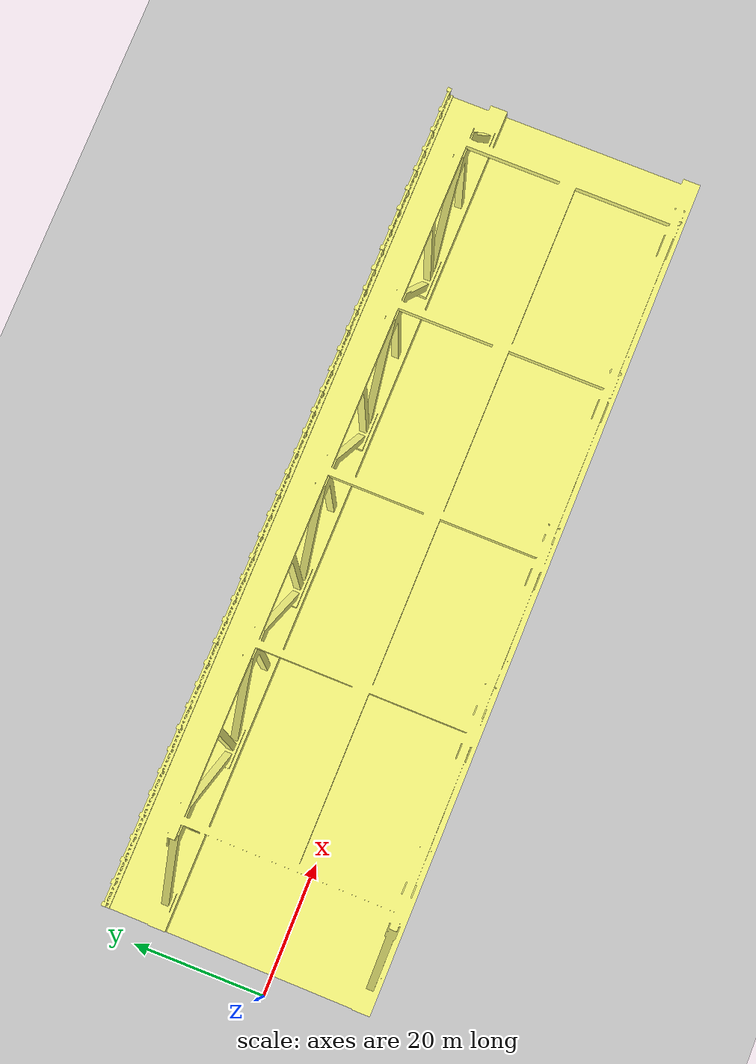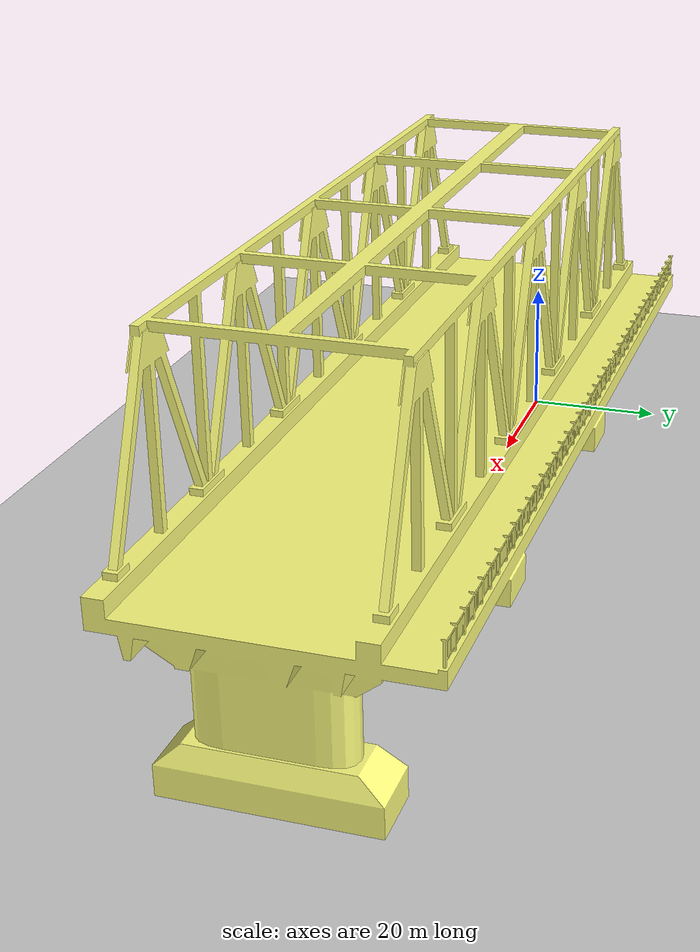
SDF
<?xml version="1.0" encoding="UTF-8"?>
<sdf version="1.9">
  <world name="bridge">
    <physics type="ode">
      <max_step_size>0.004</max_step_size>
      <real_time_factor>1.0</real_time_factor>
      <real_time_update_rate>250</real_time_update_rate>
    </physics>
    <plugin name="gz::sim::systems::Physics" filename="gz-sim-physics-system"/>
    <plugin name="gz::sim::systems::UserCommands" filename="gz-sim-user-commands-system"/>
    <plugin name="gz::sim::systems::SceneBroadcaster" filename="gz-sim-scene-broadcaster-system"/>
    <plugin name="gz::sim::systems::Contact" filename="gz-sim-contact-system"/>
    <plugin name="gz::sim::systems::Imu" filename="gz-sim-imu-system"/>
    <plugin name="gz::sim::systems::ForceTorque" filename="gz-sim-forcetorque-system"/>
    <plugin name="gz::sim::systems::AirPressure" filename="gz-sim-air-pressure-system"/>
    <plugin name="gz::sim::systems::ApplyLinkWrench" filename="gz-sim-apply-link-wrench-system"/>
    <plugin name="gz::sim::systems::NavSat" filename="gz-sim-navsat-system"/>
    <plugin name="gz::sim::systems::Sensors" filename="gz-sim-sensors-system">
      <render_engine>ogre2</render_engine>
    </plugin>
    <gravity>0 0 -9.8</gravity>
    <magnetic_field>6e-06 2.3e-05 -4.2e-05</magnetic_field>
    <atmosphere type="adiabatic"/>
    <scene>
      <grid>false</grid>
      <ambient>0.4 0.4 0.4 1</ambient>
      <background>0.7 0.7 0.7 1</background>
      <shadows>true</shadows>
    </scene>
    <model name="ground_plane">
      <static>true</static>
      <link name="link">
        <collision name="collision">
          <geometry>
            <plane>
              <normal>0 0 1</normal>
              <size>1 1</size>
            </plane>
          </geometry>
          <surface>
            <friction>
              <ode/>
            </friction>
            <bounce/>
            <contact/>
          </surface>
        </collision>
        <visual name="visual">
          <geometry>
            <plane>
              <normal>0 0 1</normal>
              <size>500 500</size>
            </plane>
          </geometry>
          <material>
            <ambient>0.8 0.8 0.8 1</ambient>
            <diffuse>0.8 0.8 0.8 1</diffuse>
            <specular>0.8 0.8 0.8 1</specular>
          </material>
        </visual>
        <pose>0 0 0 0 -0 0</pose>
        <inertial>
          <pose>0 0 0 0 -0 0</pose>
          <mass>1</mass>
          <inertia>
            <ixx>1</ixx>
            <ixy>0</ixy>
            <ixz>0</ixz>
            <iyy>1</iyy>
            <iyz>0</iyz>
            <izz>1</izz>
          </inertia>
        </inertial>
        <enable_wind>false</enable_wind>
      </link>
      <pose>0 0 0 0 -0 0</pose>
      <self_collide>false</self_collide>
    </model>
    <include>
      <uri>model://bridge</uri>
    </include>
    <light name="sunUTC" type="directional">
      <pose>0 0 500 0 -0 0</pose>
      <cast_shadows>true</cast_shadows>
      <intensity>1</intensity>
      <direction>0.001 0.625 -0.78</direction>
      <diffuse>0.904 0.904 0.904 1</diffuse>
      <specular>0.271 0.271 0.271 1</specular>
      <attenuation>
        <range>2000</range>
        <linear>0</linear>
        <constant>1</constant>
        <quadratic>0</quadratic>
      </attenuation>
      <spot>
        <inner_angle>0</inner_angle>
        <outer_angle>0</outer_angle>
        <falloff>0</falloff>
      </spot>
    </light>
    <spherical_coordinates>
      <surface_model>EARTH_WGS84</surface_model>
      <world_frame_orientation>ENU</world_frame_orientation>
      <latitude_deg>47.397971057728974</latitude_deg>
      <longitude_deg> 8.546163739800146</longitude_deg>
      <elevation>0</elevation>
    </spherical_coordinates>
  </world>
</sdf>

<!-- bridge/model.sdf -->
<sdf version='1.7'>
  <model name='bridge'>
    <static>true</static>
    <pose>65 0 0 0 0 0</pose>
    <link name='link_0'>
      <inertial>
        <mass>10</mass>
        <inertia>
          <ixx>0.166667</ixx>
          <ixy>0</ixy>
          <ixz>0</ixz>
          <iyy>0.166667</iyy>
          <iyz>0</iyz>
          <izz>0.166667</izz>
        </inertia>
      </inertial>
      <pose>-0 0 0 0 -0 0</pose>
      <visual name='visual'>
        <pose>0 0 0 0 -0 0</pose>
        <geometry>
          <mesh>
            <uri>model://bridge/meshes/bishebridge.stl</uri>
            <scale>1 1 1</scale>
          </mesh>
        </geometry>
        <material>
          <ambient>1 1 0.5 1</ambient>
          <diffuse>1 1 0.5 1</diffuse>
        </material>
        <transparency>0</transparency>
        <cast_shadows>1</cast_shadows>
      </visual>
      <collision name='collision'>
        <laser_retro>0</laser_retro>
        <max_contacts>10</max_contacts>
        <pose>0 0 0 0 -0 0</pose>
        <geometry>
          <mesh>
            <uri>model://bridge/meshes/bishebridge.stl</uri>
            <scale>1 1 1</scale>
          </mesh>
        </geometry>
        <surface>
          <friction>
            <ode>
              <mu>1</mu>
              <mu2>1</mu2>
              <fdir1>0 0 0</fdir1>
              <slip1>0</slip1>
              <slip2>0</slip2>
            </ode>
            <torsional>
              <coefficient>1</coefficient>
              <patch_radius>0</patch_radius>
              <surface_radius>0</surface_radius>
              <use_patch_radius>1</use_patch_radius>
              <ode>
                <slip>0</slip>
              </ode>
            </torsional>
          </friction>
          <bounce>
            <restitution_coefficient>0</restitution_coefficient>
            <threshold>1e+06</threshold>
          </bounce>
          <contact>
            <collide_without_contact>0</collide_without_contact>
            <collide_without_contact_bitmask>1</collide_without_contact_bitmask>
            <collide_bitmask>1</collide_bitmask>
            <ode>
              <soft_cfm>0</soft_cfm>
              <soft_erp>0.2</soft_erp>
              <kp>1e+13</kp>
              <kd>1</kd>
              <max_vel>0.01</max_vel>
              <min_depth>0</min_depth>
            </ode>
            <bullet>
              <split_impulse>1</split_impulse>
              <split_impulse_penetration_threshold>-0.01</split_impulse_penetration_threshold>
              <soft_cfm>0</soft_cfm>
              <soft_erp>0.2</soft_erp>
              <kp>1e+13</kp>
              <kd>1</kd>
            </bullet>
          </contact>
        </surface>
      </collision>
    </link>
    <allow_auto_disable>1</allow_auto_disable>
  </model>
</sdf>
